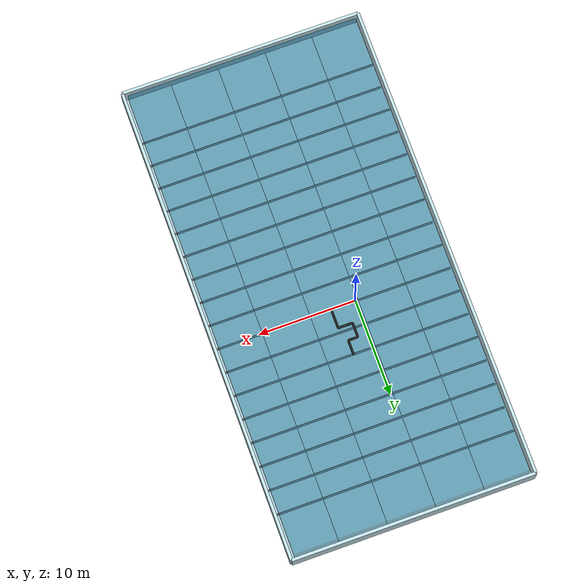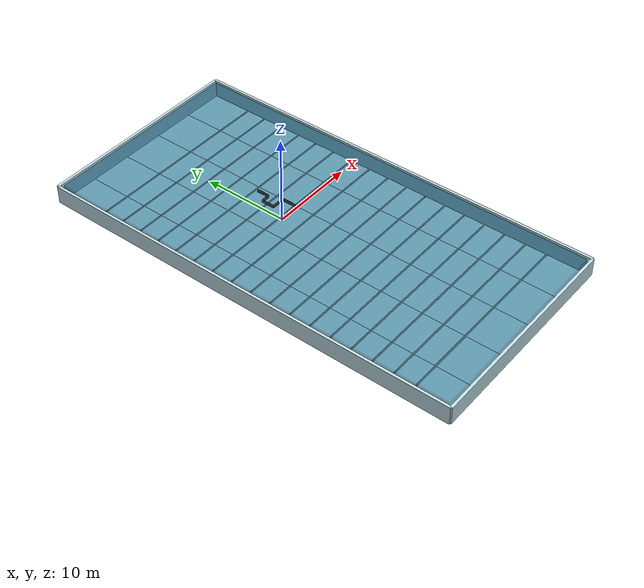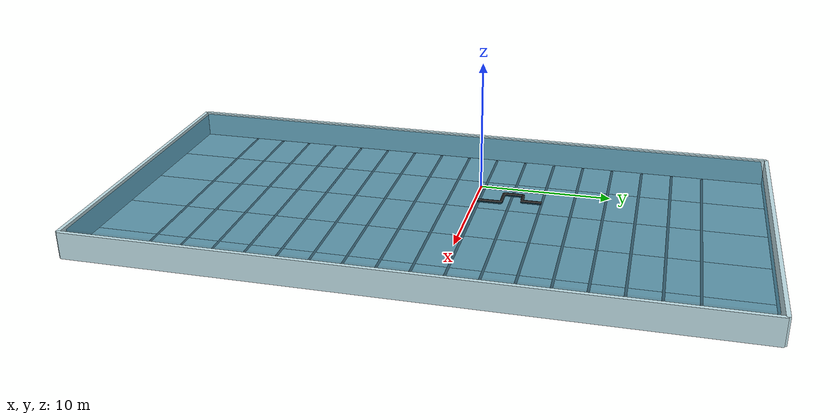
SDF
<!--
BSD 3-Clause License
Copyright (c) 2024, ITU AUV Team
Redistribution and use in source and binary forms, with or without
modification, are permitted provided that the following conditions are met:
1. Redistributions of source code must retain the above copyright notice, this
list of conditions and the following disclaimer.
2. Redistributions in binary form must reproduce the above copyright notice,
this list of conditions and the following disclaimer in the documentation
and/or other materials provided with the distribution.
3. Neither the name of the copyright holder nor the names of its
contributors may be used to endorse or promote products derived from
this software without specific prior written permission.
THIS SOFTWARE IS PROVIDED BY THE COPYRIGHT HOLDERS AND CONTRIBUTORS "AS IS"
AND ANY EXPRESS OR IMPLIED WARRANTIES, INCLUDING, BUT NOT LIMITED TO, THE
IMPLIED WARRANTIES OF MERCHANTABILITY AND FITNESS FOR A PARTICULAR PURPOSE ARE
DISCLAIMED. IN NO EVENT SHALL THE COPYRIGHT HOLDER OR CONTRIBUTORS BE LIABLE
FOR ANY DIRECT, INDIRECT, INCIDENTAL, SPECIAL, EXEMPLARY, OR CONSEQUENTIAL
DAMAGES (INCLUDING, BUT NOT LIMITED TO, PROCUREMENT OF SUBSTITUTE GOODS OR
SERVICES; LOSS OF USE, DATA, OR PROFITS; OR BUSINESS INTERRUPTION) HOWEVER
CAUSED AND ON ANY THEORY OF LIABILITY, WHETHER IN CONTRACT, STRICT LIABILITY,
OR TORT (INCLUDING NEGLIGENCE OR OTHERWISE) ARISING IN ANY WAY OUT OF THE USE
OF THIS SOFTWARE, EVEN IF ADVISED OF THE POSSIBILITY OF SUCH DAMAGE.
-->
<?xml version="1.0" ?>

<sdf version="1.6">
  <world name="prototype_world">
    <physics name="1ms" type="ignored">
      <max_step_size>0.004</max_step_size>
      <real_time_factor>1.0</real_time_factor>
      <real_time_update_rate>250</real_time_update_rate>
    </physics>
    <scene>
      <ambient>0.35 0.45 0.5 1.0</ambient>
      <background>0.3 0.5 0.6 1.0</background>
      <sky><clouds><speed>12</speed></clouds></sky>
      <shadows>true</shadows>
      <!-- Faint blue-green underwater haze; starts past most of the pool's
           width so the course stays fully visible, just tints the far wall. -->
      <fog>
        <color>0.05 0.25 0.35 1.0</color>
        <type>linear</type>
        <density>0.01</density>
        <start>8</start>
        <end>45</end>
      </fog>
    </scene>

    <include><uri>https://fuel.gazebosim.org/1.0/OpenRobotics/models/Sun</uri></include>

    <include>
      <uri>model://pool</uri>
      <name>pool</name>
      <pose>2 -3 0 0 0 0</pose>
    </include>
    <model name='lane_marker_1'>
      <static>1</static>
      <pose>2 7 -2.134 0 0 0</pose>
      <link name='lane_marker_1_link'>
        <visual name='lane_marker_1_visual'>
          <geometry>
            <box>
              <size>24.4 0.2 0.01</size>
            </box>
          </geometry>
          <material>
            <ambient>0.4 0.4 0.4 1</ambient>
            <diffuse>0.4 0.4 0.4 1</diffuse>
            <specular>0.1 0.1 0.1 1</specular>
          </material>
        </visual>
        <self_collide>0</self_collide>
        <enable_wind>0</enable_wind>
        <kinematic>0</kinematic>
      </link>
    </model>
    <model name='lane_marker_2'>
      <static>1</static>
      <pose>2 4.5 -2.134 0 0 0</pose>
      <link name='lane_marker_2_link'>
        <visual name='lane_marker_2_visual'>
          <geometry>
            <box>
              <size>24.4 0.2 0.01</size>
            </box>
          </geometry>
          <material>
            <ambient>0.4 0.4 0.4 1</ambient>
            <diffuse>0.4 0.4 0.4 1</diffuse>
            <specular>0.1 0.1 0.1 1</specular>
          </material>
        </visual>
        <self_collide>0</self_collide>
        <enable_wind>0</enable_wind>
        <kinematic>0</kinematic>
      </link>
    </model>
    <model name='lane_marker_3'>
      <static>1</static>
      <pose>2 2 -2.134 0 0 0</pose>
      <link name='lane_marker_3_link'>
        <visual name='lane_marker_3_visual'>
          <geometry>
            <box>
              <size>24.4 0.2 0.01</size>
            </box>
          </geometry>
          <material>
            <ambient>0.4 0.4 0.4 1</ambient>
            <diffuse>0.4 0.4 0.4 1</diffuse>
            <specular>0.1 0.1 0.1 1</specular>
          </material>
        </visual>
        <self_collide>0</self_collide>
        <enable_wind>0</enable_wind>
        <kinematic>0</kinematic>
      </link>
    </model>
    <model name='lane_marker_4'>
      <static>1</static>
      <pose>2 -0.5 -2.134 0 0 0</pose>
      <link name='lane_marker_4_link'>
        <visual name='lane_marker_4_visual'>
          <geometry>
            <box>
              <size>24.4 0.2 0.01</size>
            </box>
          </geometry>
          <material>
            <ambient>0.4 0.4 0.4 1</ambient>
            <diffuse>0.4 0.4 0.4 1</diffuse>
            <specular>0.1 0.1 0.1 1</specular>
          </material>
        </visual>
        <self_collide>0</self_collide>
        <enable_wind>0</enable_wind>
        <kinematic>0</kinematic>
      </link>
    </model>
    <model name='lane_marker_5'>
      <static>1</static>
      <pose>2 -3 -2.134 0 0 0</pose>
      <link name='lane_marker_5_link'>
        <visual name='lane_marker_5_visual'>
          <geometry>
            <box>
              <size>24.4 0.2 0.01</size>
            </box>
          </geometry>
          <material>
            <ambient>0.4 0.4 0.4 1</ambient>
            <diffuse>0.4 0.4 0.4 1</diffuse>
            <specular>0.1 0.1 0.1 1</specular>
          </material>
        </visual>
        <self_collide>0</self_collide>
        <enable_wind>0</enable_wind>
        <kinematic>0</kinematic>
      </link>
    </model>
    <model name='lane_marker_6'>
      <static>1</static>
      <pose>2 -5.5 -2.134 0 0 0</pose>
      <link name='lane_marker_6_link'>
        <visual name='lane_marker_6_visual'>
          <geometry>
            <box>
              <size>24.4 0.2 0.01</size>
            </box>
          </geometry>
          <material>
            <ambient>0.4 0.4 0.4 1</ambient>
            <diffuse>0.4 0.4 0.4 1</diffuse>
            <specular>0.1 0.1 0.1 1</specular>
          </material>
        </visual>
        <self_collide>0</self_collide>
        <enable_wind>0</enable_wind>
        <kinematic>0</kinematic>
      </link>
    </model>
    <model name='lane_marker_7'>
      <static>1</static>
      <pose>2 -8 -2.134 0 0 0</pose>
      <link name='lane_marker_7_link'>
        <visual name='lane_marker_7_visual'>
          <geometry>
            <box>
              <size>24.4 0.2 0.01</size>
            </box>
          </geometry>
          <material>
            <ambient>0.4 0.4 0.4 1</ambient>
            <diffuse>0.4 0.4 0.4 1</diffuse>
            <specular>0.1 0.1 0.1 1</specular>
          </material>
        </visual>
        <self_collide>0</self_collide>
        <enable_wind>0</enable_wind>
        <kinematic>0</kinematic>
      </link>
    </model>
    <model name='lane_marker_8'>
      <static>1</static>
      <pose>2 -10.5 -2.134 0 0 0</pose>
      <link name='lane_marker_8_link'>
        <visual name='lane_marker_8_visual'>
          <geometry>
            <box>
              <size>24.4 0.2 0.01</size>
            </box>
          </geometry>
          <material>
            <ambient>0.4 0.4 0.4 1</ambient>
            <diffuse>0.4 0.4 0.4 1</diffuse>
            <specular>0.1 0.1 0.1 1</specular>
          </material>
        </visual>
        <self_collide>0</self_collide>
        <enable_wind>0</enable_wind>
        <kinematic>0</kinematic>
      </link>
    </model>
    <model name='lane_marker_9'>
      <static>1</static>
      <pose>2 -13 -2.134 0 0 0</pose>
      <link name='lane_marker_9_link'>
        <visual name='lane_marker_9_visual'>
          <geometry>
            <box>
              <size>24.4 0.2 0.01</size>
            </box>
          </geometry>
          <material>
            <ambient>0.4 0.4 0.4 1</ambient>
            <diffuse>0.4 0.4 0.4 1</diffuse>
            <specular>0.1 0.1 0.1 1</specular>
          </material>
        </visual>
        <self_collide>0</self_collide>
        <enable_wind>0</enable_wind>
        <kinematic>0</kinematic>
      </link>
    </model>
    <model name='lane_marker_10'>
      <static>1</static>
      <pose>2 -15.5 -2.134 0 0 0</pose>
      <link name='lane_marker_10_link'>
        <visual name='lane_marker_10_visual'>
          <geometry>
            <box>
              <size>24.4 0.2 0.01</size>
            </box>
          </geometry>
          <material>
            <ambient>0.4 0.4 0.4 1</ambient>
            <diffuse>0.4 0.4 0.4 1</diffuse>
            <specular>0.1 0.1 0.1 1</specular>
          </material>
        </visual>
        <self_collide>0</self_collide>
        <enable_wind>0</enable_wind>
        <kinematic>0</kinematic>
      </link>
    </model>
    <model name='lane_marker_11'>
      <static>1</static>
      <pose>2 -18 -2.134 0 0 0</pose>
      <link name='lane_marker_11_link'>
        <visual name='lane_marker_11_visual'>
          <geometry>
            <box>
              <size>24.4 0.2 0.01</size>
            </box>
          </geometry>
          <material>
            <ambient>0.4 0.4 0.4 1</ambient>
            <diffuse>0.4 0.4 0.4 1</diffuse>
            <specular>0.1 0.1 0.1 1</specular>
          </material>
        </visual>
        <self_collide>0</self_collide>
        <enable_wind>0</enable_wind>
        <kinematic>0</kinematic>
      </link>
    </model>
    <model name='lane_marker_12'>
      <static>1</static>
      <pose>2 -20.5 -2.134 0 0 0</pose>
      <link name='lane_marker_12_link'>
        <visual name='lane_marker_12_visual'>
          <geometry>
            <box>
              <size>24.4 0.2 0.01</size>
            </box>
          </geometry>
          <material>
            <ambient>0.4 0.4 0.4 1</ambient>
            <diffuse>0.4 0.4 0.4 1</diffuse>
            <specular>0.1 0.1 0.1 1</specular>
          </material>
        </visual>
        <self_collide>0</self_collide>
        <enable_wind>0</enable_wind>
        <kinematic>0</kinematic>
      </link>
    </model>
    <model name='lane_marker_13'>
      <static>1</static>
      <pose>2 -23 -2.134 0 0 0</pose>
      <link name='lane_marker_13_link'>
        <visual name='lane_marker_13_visual'>
          <geometry>
            <box>
              <size>24.4 0.2 0.01</size>
            </box>
          </geometry>
          <material>
            <ambient>0.4 0.4 0.4 1</ambient>
            <diffuse>0.4 0.4 0.4 1</diffuse>
            <specular>0.1 0.1 0.1 1</specular>
          </material>
        </visual>
        <self_collide>0</self_collide>
        <enable_wind>0</enable_wind>
        <kinematic>0</kinematic>
      </link>
    </model>
    <model name='lane_marker_14'>
      <static>1</static>
      <pose>2 9.5 -2.134 0 0 0</pose>
      <link name='lane_marker_14_link'>
        <visual name='lane_marker_14_visual'>
          <geometry>
            <box>
              <size>24.4 0.2 0.01</size>
            </box>
          </geometry>
          <material>
            <ambient>0.4 0.4 0.4 1</ambient>
            <diffuse>0.4 0.4 0.4 1</diffuse>
            <specular>0.1 0.1 0.1 1</specular>
          </material>
        </visual>
        <self_collide>0</self_collide>
        <enable_wind>0</enable_wind>
        <kinematic>0</kinematic>
      </link>
    </model>
    <model name='lane_marker_15'>
      <static>1</static>
      <pose>2 12 -2.134 0 0 0</pose>
      <link name='lane_marker_15_link'>
        <visual name='lane_marker_15_visual'>
          <geometry>
            <box>
              <size>24.4 0.2 0.01</size>
            </box>
          </geometry>
          <material>
            <ambient>0.4 0.4 0.4 1</ambient>
            <diffuse>0.4 0.4 0.4 1</diffuse>
            <specular>0.1 0.1 0.1 1</specular>
          </material>
        </visual>
        <self_collide>0</self_collide>
        <enable_wind>0</enable_wind>
        <kinematic>0</kinematic>
      </link>
    </model>
    <model name='lane_marker_16'>
      <static>1</static>
      <pose>2 14.5 -2.134 0 0 0</pose>
      <link name='lane_marker_16_link'>
        <visual name='lane_marker_16_visual'>
          <geometry>
            <box>
              <size>24.4 0.2 0.01</size>
            </box>
          </geometry>
          <material>
            <ambient>0.4 0.4 0.4 1</ambient>
            <diffuse>0.4 0.4 0.4 1</diffuse>
            <specular>0.1 0.1 0.1 1</specular>
          </material>
        </visual>
        <self_collide>0</self_collide>
        <enable_wind>0</enable_wind>
        <kinematic>0</kinematic>
      </link>
    </model>
    <model name='lane_marker_17'>
      <static>1</static>
      <pose>2 17 -2.134 0 0 0</pose>
      <link name='lane_marker_17_link'>
        <visual name='lane_marker_17_visual'>
          <geometry>
            <box>
              <size>24.4 0.2 0.01</size>
            </box>
          </geometry>
          <material>
            <ambient>0.4 0.4 0.4 1</ambient>
            <diffuse>0.4 0.4 0.4 1</diffuse>
            <specular>0.1 0.1 0.1 1</specular>
          </material>
        </visual>
        <self_collide>0</self_collide>
        <enable_wind>0</enable_wind>
        <kinematic>0</kinematic>
      </link>
    </model>

    <include>
      <uri>model://teknofest_pipe</uri>
      <name>pipe</name>
      <pose>0 0 0 0 0 0</pose>
    </include>

    <plugin filename="gz-sim-physics-system" name="gz::sim::systems::Physics"></plugin>
    <plugin filename="gz-sim-user-commands-system" name="gz::sim::systems::UserCommands"></plugin>
    <plugin filename="gz-sim-scene-broadcaster-system" name="gz::sim::systems::SceneBroadcaster"></plugin>
    <plugin filename="gz-sim-imu-system" name="gz::sim::systems::Imu"></plugin>
    <plugin filename="gz-sim-dvl-system" name="gz::sim::systems::DopplerVelocityLogSystem"></plugin>
    <plugin filename="gz-sim-sensors-system" name="gz::sim::systems::Sensors">
      <render_engine>ogre2</render_engine>
    </plugin>

    <plugin
        filename="gz-sim-buoyancy-system"
        name="gz::sim::systems::Buoyancy">
      <!-- Fluid density is 1 (air) above 0 and 1000 (water) below 0 -->
      <graded_buoyancy>
        <default_density>1000</default_density>
        <density_change>
          <above_depth>0</above_depth>
          <density>1</density>
        </density_change>
      </graded_buoyancy>
      <!-- Enable by model name -->
      <enable>prototype_vehicle</enable>
    </plugin>

  </world>
</sdf>

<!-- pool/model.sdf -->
<sdf version="1.6">
  <model name="pool">
    <static>true</static>

    <!-- Floor: one physics collision box, a tiled grid of visual-only
         squares on top so the PBR texture keeps a 1:1 aspect ratio instead
         of stretching across the full 25x50m span. -->
    <link name="floor_link">
      <collision name="floor_collision">
        <pose>0 0 -2.18 0 0 0</pose>
        <geometry>
          <box><size>25.0 50.0 0.1</size></box>
        </geometry>
        <surface>
          <friction><ode><mu>0.5</mu><mu2>0.5</mu2></ode></friction>
          <contact><ode/></contact>
          <bounce/>
        </surface>
      </collision>
      <visual name="floor_tile_1_visual">
        <pose>-10 -22.5 -2.13 0 0 0</pose>
        <geometry>
          <box><size>5 5 0.001</size></box>
        </geometry>
          <material>
            <ambient>0.55 0.7 0.75 1</ambient>
            <diffuse>0.7 0.82 0.85 1</diffuse>
            <specular>0.2 0.2 0.2 1</specular>
            <pbr>
              <metal>
                <albedo_map>model://pool/materials/textures/pool_floor.png</albedo_map>
                <normal_map>model://pool/materials/textures/pool_floor_normal.png</normal_map>
                <roughness_map>model://pool/materials/textures/pool_floor_roughness.png</roughness_map>
                <metalness>0.0</metalness>
              </metal>
            </pbr>
          </material>
      </visual>
      <visual name="floor_tile_2_visual">
        <pose>-10 -17.5 -2.13 0 0 0</pose>
        <geometry>
          <box><size>5 5 0.001</size></box>
        </geometry>
          <material>
            <ambient>0.55 0.7 0.75 1</ambient>
            <diffuse>0.7 0.82 0.85 1</diffuse>
            <specular>0.2 0.2 0.2 1</specular>
            <pbr>
              <metal>
                <albedo_map>model://pool/materials/textures/pool_floor.png</albedo_map>
                <normal_map>model://pool/materials/textures/pool_floor_normal.png</normal_map>
                <roughness_map>model://pool/materials/textures/pool_floor_roughness.png</roughness_map>
                <metalness>0.0</metalness>
              </metal>
            </pbr>
          </material>
      </visual>
      <visual name="floor_tile_3_visual">
        <pose>-10 -12.5 -2.13 0 0 0</pose>
        <geometry>
          <box><size>5 5 0.001</size></box>
        </geometry>
          <material>
            <ambient>0.55 0.7 0.75 1</ambient>
            <diffuse>0.7 0.82 0.85 1</diffuse>
            <specular>0.2 0.2 0.2 1</specular>
            <pbr>
              <metal>
                <albedo_map>model://pool/materials/textures/pool_floor.png</albedo_map>
                <normal_map>model://pool/materials/textures/pool_floor_normal.png</normal_map>
                <roughness_map>model://pool/materials/textures/pool_floor_roughness.png</roughness_map>
                <metalness>0.0</metalness>
              </metal>
            </pbr>
          </material>
      </visual>
      <visual name="floor_tile_4_visual">
        <pose>-10 -7.5 -2.13 0 0 0</pose>
        <geometry>
          <box><size>5 5 0.001</size></box>
        </geometry>
          <material>
            <ambient>0.55 0.7 0.75 1</ambient>
            <diffuse>0.7 0.82 0.85 1</diffuse>
            <specular>0.2 0.2 0.2 1</specular>
            <pbr>
              <metal>
                <albedo_map>model://pool/materials/textures/pool_floor.png</albedo_map>
                <normal_map>model://pool/materials/textures/pool_floor_normal.png</normal_map>
                <roughness_map>model://pool/materials/textures/pool_floor_roughness.png</roughness_map>
                <metalness>0.0</metalness>
              </metal>
            </pbr>
          </material>
      </visual>
      <visual name="floor_tile_5_visual">
        <pose>-10 -2.5 -2.13 0 0 0</pose>
        <geometry>
          <box><size>5 5 0.001</size></box>
        </geometry>
          <material>
            <ambient>0.55 0.7 0.75 1</ambient>
            <diffuse>0.7 0.82 0.85 1</diffuse>
            <specular>0.2 0.2 0.2 1</specular>
            <pbr>
              <metal>
                <albedo_map>model://pool/materials/textures/pool_floor.png</albedo_map>
                <normal_map>model://pool/materials/textures/pool_floor_normal.png</normal_map>
                <roughness_map>model://pool/materials/textures/pool_floor_roughness.png</roughness_map>
                <metalness>0.0</metalness>
              </metal>
            </pbr>
          </material>
      </visual>
      <visual name="floor_tile_6_visual">
        <pose>-10 2.5 -2.13 0 0 0</pose>
        <geometry>
          <box><size>5 5 0.001</size></box>
        </geometry>
          <material>
            <ambient>0.55 0.7 0.75 1</ambient>
            <diffuse>0.7 0.82 0.85 1</diffuse>
            <specular>0.2 0.2 0.2 1</specular>
            <pbr>
              <metal>
                <albedo_map>model://pool/materials/textures/pool_floor.png</albedo_map>
                <normal_map>model://pool/materials/textures/pool_floor_normal.png</normal_map>
                <roughness_map>model://pool/materials/textures/pool_floor_roughness.png</roughness_map>
                <metalness>0.0</metalness>
              </metal>
            </pbr>
          </material>
      </visual>
      <visual name="floor_tile_7_visual">
        <pose>-10 7.5 -2.13 0 0 0</pose>
        <geometry>
          <box><size>5 5 0.001</size></box>
        </geometry>
          <material>
            <ambient>0.55 0.7 0.75 1</ambient>
            <diffuse>0.7 0.82 0.85 1</diffuse>
            <specular>0.2 0.2 0.2 1</specular>
            <pbr>
              <metal>
                <albedo_map>model://pool/materials/textures/pool_floor.png</albedo_map>
                <normal_map>model://pool/materials/textures/pool_floor_normal.png</normal_map>
                <roughness_map>model://pool/materials/textures/pool_floor_roughness.png</roughness_map>
                <metalness>0.0</metalness>
              </metal>
            </pbr>
          </material>
      </visual>
      <visual name="floor_tile_8_visual">
        <pose>-10 12.5 -2.13 0 0 0</pose>
        <geometry>
          <box><size>5 5 0.001</size></box>
        </geometry>
          <material>
            <ambient>0.55 0.7 0.75 1</ambient>
            <diffuse>0.7 0.82 0.85 1</diffuse>
            <specular>0.2 0.2 0.2 1</specular>
            <pbr>
              <metal>
                <albedo_map>model://pool/materials/textures/pool_floor.png</albedo_map>
                <normal_map>model://pool/materials/textures/pool_floor_normal.png</normal_map>
                <roughness_map>model://pool/materials/textures/pool_floor_roughness.png</roughness_map>
                <metalness>0.0</metalness>
              </metal>
            </pbr>
          </material>
      </visual>
      <visual name="floor_tile_9_visual">
        <pose>-10 17.5 -2.13 0 0 0</pose>
        <geometry>
          <box><size>5 5 0.001</size></box>
        </geometry>
          <material>
            <ambient>0.55 0.7 0.75 1</ambient>
            <diffuse>0.7 0.82 0.85 1</diffuse>
            <specular>0.2 0.2 0.2 1</specular>
            <pbr>
              <metal>
                <albedo_map>model://pool/materials/textures/pool_floor.png</albedo_map>
                <normal_map>model://pool/materials/textures/pool_floor_normal.png</normal_map>
                <roughness_map>model://pool/materials/textures/pool_floor_roughness.png</roughness_map>
                <metalness>0.0</metalness>
              </metal>
            </pbr>
          </material>
      </visual>
      <visual name="floor_tile_10_visual">
        <pose>-10 22.5 -2.13 0 0 0</pose>
        <geometry>
          <box><size>5 5 0.001</size></box>
        </geometry>
          <material>
            <ambient>0.55 0.7 0.75 1</ambient>
            <diffuse>0.7 0.82 0.85 1</diffuse>
            <specular>0.2 0.2 0.2 1</specular>
            <pbr>
              <metal>
                <albedo_map>model://pool/materials/textures/pool_floor.png</albedo_map>
                <normal_map>model://pool/materials/textures/pool_floor_normal.png</normal_map>
                <roughness_map>model://pool/materials/textures/pool_floor_roughness.png</roughness_map>
                <metalness>0.0</metalness>
              </metal>
            </pbr>
          </material>
      </visual>
      <visual name="floor_tile_11_visual">
        <pose>-5 -22.5 -2.13 0 0 0</pose>
        <geometry>
          <box><size>5 5 0.001</size></box>
        </geometry>
          <material>
            <ambient>0.55 0.7 0.75 1</ambient>
            <diffuse>0.7 0.82 0.85 1</diffuse>
            <specular>0.2 0.2 0.2 1</specular>
            <pbr>
              <metal>
                <albedo_map>model://pool/materials/textures/pool_floor.png</albedo_map>
                <normal_map>model://pool/materials/textures/pool_floor_normal.png</normal_map>
                <roughness_map>model://pool/materials/textures/pool_floor_roughness.png</roughness_map>
                <metalness>0.0</metalness>
              </metal>
            </pbr>
          </material>
      </visual>
      <visual name="floor_tile_12_visual">
        <pose>-5 -17.5 -2.13 0 0 0</pose>
        <geometry>
          <box><size>5 5 0.001</size></box>
        </geometry>
          <material>
            <ambient>0.55 0.7 0.75 1</ambient>
            <diffuse>0.7 0.82 0.85 1</diffuse>
            <specular>0.2 0.2 0.2 1</specular>
            <pbr>
              <metal>
                <albedo_map>model://pool/materials/textures/pool_floor.png</albedo_map>
                <normal_map>model://pool/materials/textures/pool_floor_normal.png</normal_map>
                <roughness_map>model://pool/materials/textures/pool_floor_roughness.png</roughness_map>
                <metalness>0.0</metalness>
              </metal>
            </pbr>
          </material>
      </visual>
      <visual name="floor_tile_13_visual">
        <pose>-5 -12.5 -2.13 0 0 0</pose>
        <geometry>
          <box><size>5 5 0.001</size></box>
        </geometry>
          <material>
            <ambient>0.55 0.7 0.75 1</ambient>
            <diffuse>0.7 0.82 0.85 1</diffuse>
            <specular>0.2 0.2 0.2 1</specular>
            <pbr>
              <metal>
                <albedo_map>model://pool/materials/textures/pool_floor.png</albedo_map>
                <normal_map>model://pool/materials/textures/pool_floor_normal.png</normal_map>
                <roughness_map>model://pool/materials/textures/pool_floor_roughness.png</roughness_map>
                <metalness>0.0</metalness>
              </metal>
            </pbr>
          </material>
      </visual>
      <visual name="floor_tile_14_visual">
        <pose>-5 -7.5 -2.13 0 0 0</pose>
        <geometry>
          <box><size>5 5 0.001</size></box>
        </geometry>
          <material>
            <ambient>0.55 0.7 0.75 1</ambient>
            <diffuse>0.7 0.82 0.85 1</diffuse>
            <specular>0.2 0.2 0.2 1</specular>
            <pbr>
              <metal>
                <albedo_map>model://pool/materials/textures/pool_floor.png</albedo_map>
                <normal_map>model://pool/materials/textures/pool_floor_normal.png</normal_map>
                <roughness_map>model://pool/materials/textures/pool_floor_roughness.png</roughness_map>
                <metalness>0.0</metalness>
              </metal>
            </pbr>
          </material>
      </visual>
      <visual name="floor_tile_15_visual">
        <pose>-5 -2.5 -2.13 0 0 0</pose>
        <geometry>
          <box><size>5 5 0.001</size></box>
        </geometry>
          <material>
            <ambient>0.55 0.7 0.75 1</ambient>
            <diffuse>0.7 0.82 0.85 1</diffuse>
            <specular>0.2 0.2 0.2 1</specular>
            <pbr>
              <metal>
                <albedo_map>model://pool/materials/textures/pool_floor.png</albedo_map>
                <normal_map>model://pool/materials/textures/pool_floor_normal.png</normal_map>
                <roughness_map>model://pool/materials/textures/pool_floor_roughness.png</roughness_map>
                <metalness>0.0</metalness>
              </metal>
            </pbr>
          </material>
      </visual>
      <visual name="floor_tile_16_visual">
        <pose>-5 2.5 -2.13 0 0 0</pose>
        <geometry>
          <box><size>5 5 0.001</size></box>
        </geometry>
          <material>
            <ambient>0.55 0.7 0.75 1</ambient>
            <diffuse>0.7 0.82 0.85 1</diffuse>
            <specular>0.2 0.2 0.2 1</specular>
            <pbr>
              <metal>
                <albedo_map>model://pool/materials/textures/pool_floor.png</albedo_map>
                <normal_map>model://pool/materials/textures/pool_floor_normal.png</normal_map>
                <roughness_map>model://pool/materials/textures/pool_floor_roughness.png</roughness_map>
                <metalness>0.0</metalness>
              </metal>
            </pbr>
          </material>
      </visual>
      <visual name="floor_tile_17_visual">
        <pose>-5 7.5 -2.13 0 0 0</pose>
        <geometry>
          <box><size>5 5 0.001</size></box>
        </geometry>
          <material>
            <ambient>0.55 0.7 0.75 1</ambient>
            <diffuse>0.7 0.82 0.85 1</diffuse>
            <specular>0.2 0.2 0.2 1</specular>
            <pbr>
              <metal>
                <albedo_map>model://pool/materials/textures/pool_floor.png</albedo_map>
                <normal_map>model://pool/materials/textures/pool_floor_normal.png</normal_map>
                <roughness_map>model://pool/materials/textures/pool_floor_roughness.png</roughness_map>
                <metalness>0.0</metalness>
              </metal>
            </pbr>
          </material>
      </visual>
      <visual name="floor_tile_18_visual">
        <pose>-5 12.5 -2.13 0 0 0</pose>
        <geometry>
          <box><size>5 5 0.001</size></box>
        </geometry>
          <material>
            <ambient>0.55 0.7 0.75 1</ambient>
            <diffuse>0.7 0.82 0.85 1</diffuse>
            <specular>0.2 0.2 0.2 1</specular>
            <pbr>
              <metal>
                <albedo_map>model://pool/materials/textures/pool_floor.png</albedo_map>
                <normal_map>model://pool/materials/textures/pool_floor_normal.png</normal_map>
                <roughness_map>model://pool/materials/textures/pool_floor_roughness.png</roughness_map>
                <metalness>0.0</metalness>
              </metal>
            </pbr>
          </material>
      </visual>
      <visual name="floor_tile_19_visual">
        <pose>-5 17.5 -2.13 0 0 0</pose>
        <geometry>
          <box><size>5 5 0.001</size></box>
        </geometry>
          <material>
            <ambient>0.55 0.7 0.75 1</ambient>
            <diffuse>0.7 0.82 0.85 1</diffuse>
            <specular>0.2 0.2 0.2 1</specular>
            <pbr>
              <metal>
                <albedo_map>model://pool/materials/textures/pool_floor.png</albedo_map>
                <normal_map>model://pool/materials/textures/pool_floor_normal.png</normal_map>
                <roughness_map>model://pool/materials/textures/pool_floor_roughness.png</roughness_map>
                <metalness>0.0</metalness>
              </metal>
            </pbr>
          </material>
      </visual>
      <visual name="floor_tile_20_visual">
        <pose>-5 22.5 -2.13 0 0 0</pose>
        <geometry>
          <box><size>5 5 0.001</size></box>
        </geometry>
          <material>
            <ambient>0.55 0.7 0.75 1</ambient>
            <diffuse>0.7 0.82 0.85 1</diffuse>
            <specular>0.2 0.2 0.2 1</specular>
            <pbr>
              <metal>
                <albedo_map>model://pool/materials/textures/pool_floor.png</albedo_map>
                <normal_map>model://pool/materials/textures/pool_floor_normal.png</normal_map>
                <roughness_map>model://pool/materials/textures/pool_floor_roughness.png</roughness_map>
                <metalness>0.0</metalness>
              </metal>
            </pbr>
          </material>
      </visual>
      <visual name="floor_tile_21_visual">
        <pose>0 -22.5 -2.13 0 0 0</pose>
        <geometry>
          <box><size>5 5 0.001</size></box>
        </geometry>
          <material>
            <ambient>0.55 0.7 0.75 1</ambient>
            <diffuse>0.7 0.82 0.85 1</diffuse>
            <specular>0.2 0.2 0.2 1</specular>
            <pbr>
              <metal>
                <albedo_map>model://pool/materials/textures/pool_floor.png</albedo_map>
                <normal_map>model://pool/materials/textures/pool_floor_normal.png</normal_map>
                <roughness_map>model://pool/materials/textures/pool_floor_roughness.png</roughness_map>
                <metalness>0.0</metalness>
              </metal>
            </pbr>
          </material>
      </visual>
      <visual name="floor_tile_22_visual">
        <pose>0 -17.5 -2.13 0 0 0</pose>
        <geometry>
          <box><size>5 5 0.001</size></box>
        </geometry>
          <material>
            <ambient>0.55 0.7 0.75 1</ambient>
            <diffuse>0.7 0.82 0.85 1</diffuse>
            <specular>0.2 0.2 0.2 1</specular>
            <pbr>
              <metal>
                <albedo_map>model://pool/materials/textures/pool_floor.png</albedo_map>
                <normal_map>model://pool/materials/textures/pool_floor_normal.png</normal_map>
                <roughness_map>model://pool/materials/textures/pool_floor_roughness.png</roughness_map>
                <metalness>0.0</metalness>
              </metal>
            </pbr>
          </material>
      </visual>
      <visual name="floor_tile_23_visual">
        <pose>0 -12.5 -2.13 0 0 0</pose>
        <geometry>
          <box><size>5 5 0.001</size></box>
        </geometry>
          <material>
            <ambient>0.55 0.7 0.75 1</ambient>
            <diffuse>0.7 0.82 0.85 1</diffuse>
            <specular>0.2 0.2 0.2 1</specular>
            <pbr>
              <metal>
                <albedo_map>model://pool/materials/textures/pool_floor.png</albedo_map>
                <normal_map>model://pool/materials/textures/pool_floor_normal.png</normal_map>
                <roughness_map>model://pool/materials/textures/pool_floor_roughness.png</roughness_map>
                <metalness>0.0</metalness>
              </metal>
            </pbr>
          </material>
      </visual>
      <visual name="floor_tile_24_visual">
        <pose>0 -7.5 -2.13 0 0 0</pose>
        <geometry>
          <box><size>5 5 0.001</size></box>
        </geometry>
          <material>
            <ambient>0.55 0.7 0.75 1</ambient>
            <diffuse>0.7 0.82 0.85 1</diffuse>
            <specular>0.2 0.2 0.2 1</specular>
            <pbr>
              <metal>
                <albedo_map>model://pool/materials/textures/pool_floor.png</albedo_map>
                <normal_map>model://pool/materials/textures/pool_floor_normal.png</normal_map>
                <roughness_map>model://pool/materials/textures/pool_floor_roughness.png</roughness_map>
                <metalness>0.0</metalness>
              </metal>
            </pbr>
          </material>
      </visual>
      <visual name="floor_tile_25_visual">
        <pose>0 -2.5 -2.13 0 0 0</pose>
        <geometry>
          <box><size>5 5 0.001</size></box>
        </geometry>
          <material>
            <ambient>0.55 0.7 0.75 1</ambient>
            <diffuse>0.7 0.82 0.85 1</diffuse>
            <specular>0.2 0.2 0.2 1</specular>
            <pbr>
              <metal>
                <albedo_map>model://pool/materials/textures/pool_floor.png</albedo_map>
                <normal_map>model://pool/materials/textures/pool_floor_normal.png</normal_map>
                <roughness_map>model://pool/materials/textures/pool_floor_roughness.png</roughness_map>
                <metalness>0.0</metalness>
              </metal>
            </pbr>
          </material>
      </visual>
      <visual name="floor_tile_26_visual">
        <pose>0 2.5 -2.13 0 0 0</pose>
        <geometry>
          <box><size>5 5 0.001</size></box>
        </geometry>
          <material>
            <ambient>0.55 0.7 0.75 1</ambient>
            <diffuse>0.7 0.82 0.85 1</diffuse>
            <specular>0.2 0.2 0.2 1</specular>
            <pbr>
              <metal>
                <albedo_map>model://pool/materials/textures/pool_floor.png</albedo_map>
                <normal_map>model://pool/materials/textures/pool_floor_normal.png</normal_map>
                <roughness_map>model://pool/materials/textures/pool_floor_roughness.png</roughness_map>
                <metalness>0.0</metalness>
              </metal>
            </pbr>
          </material>
      </visual>
      <visual name="floor_tile_27_visual">
        <pose>0 7.5 -2.13 0 0 0</pose>
        <geometry>
          <box><size>5 5 0.001</size></box>
        </geometry>
          <material>
            <ambient>0.55 0.7 0.75 1</ambient>
            <diffuse>0.7 0.82 0.85 1</diffuse>
            <specular>0.2 0.2 0.2 1</specular>
            <pbr>
              <metal>
                <albedo_map>model://pool/materials/textures/pool_floor.png</albedo_map>
                <normal_map>model://pool/materials/textures/pool_floor_normal.png</normal_map>
                <roughness_map>model://pool/materials/textures/pool_floor_roughness.png</roughness_map>
                <metalness>0.0</metalness>
              </metal>
            </pbr>
          </material>
      </visual>
      <visual name="floor_tile_28_visual">
        <pose>0 12.5 -2.13 0 0 0</pose>
        <geometry>
          <box><size>5 5 0.001</size></box>
        </geometry>
          <material>
            <ambient>0.55 0.7 0.75 1</ambient>
            <diffuse>0.7 0.82 0.85 1</diffuse>
            <specular>0.2 0.2 0.2 1</specular>
            <pbr>
              <metal>
                <albedo_map>model://pool/materials/textures/pool_floor.png</albedo_map>
                <normal_map>model://pool/materials/textures/pool_floor_normal.png</normal_map>
                <roughness_map>model://pool/materials/textures/pool_floor_roughness.png</roughness_map>
                <metalness>0.0</metalness>
              </metal>
            </pbr>
          </material>
      </visual>
      <visual name="floor_tile_29_visual">
        <pose>0 17.5 -2.13 0 0 0</pose>
        <geometry>
          <box><size>5 5 0.001</size></box>
        </geometry>
          <material>
            <ambient>0.55 0.7 0.75 1</ambient>
            <diffuse>0.7 0.82 0.85 1</diffuse>
            <specular>0.2 0.2 0.2 1</specular>
            <pbr>
              <metal>
                <albedo_map>model://pool/materials/textures/pool_floor.png</albedo_map>
                <normal_map>model://pool/materials/textures/pool_floor_normal.png</normal_map>
                <roughness_map>model://pool/materials/textures/pool_floor_roughness.png</roughness_map>
                <metalness>0.0</metalness>
              </metal>
            </pbr>
          </material>
      </visual>
      <visual name="floor_tile_30_visual">
        <pose>0 22.5 -2.13 0 0 0</pose>
        <geometry>
          <box><size>5 5 0.001</size></box>
        </geometry>
          <material>
            <ambient>0.55 0.7 0.75 1</ambient>
            <diffuse>0.7 0.82 0.85 1</diffuse>
            <specular>0.2 0.2 0.2 1</specular>
            <pbr>
              <metal>
                <albedo_map>model://pool/materials/textures/pool_floor.png</albedo_map>
                <normal_map>model://pool/materials/textures/pool_floor_normal.png</normal_map>
                <roughness_map>model://pool/materials/textures/pool_floor_roughness.png</roughness_map>
                <metalness>0.0</metalness>
              </metal>
            </pbr>
          </material>
      </visual>
      <visual name="floor_tile_31_visual">
        <pose>5 -22.5 -2.13 0 0 0</pose>
        <geometry>
          <box><size>5 5 0.001</size></box>
        </geometry>
          <material>
            <ambient>0.55 0.7 0.75 1</ambient>
            <diffuse>0.7 0.82 0.85 1</diffuse>
            <specular>0.2 0.2 0.2 1</specular>
            <pbr>
              <metal>
                <albedo_map>model://pool/materials/textures/pool_floor.png</albedo_map>
                <normal_map>model://pool/materials/textures/pool_floor_normal.png</normal_map>
                <roughness_map>model://pool/materials/textures/pool_floor_roughness.png</roughness_map>
                <metalness>0.0</metalness>
              </metal>
            </pbr>
          </material>
      </visual>
      <visual name="floor_tile_32_visual">
        <pose>5 -17.5 -2.13 0 0 0</pose>
        <geometry>
          <box><size>5 5 0.001</size></box>
        </geometry>
          <material>
            <ambient>0.55 0.7 0.75 1</ambient>
            <diffuse>0.7 0.82 0.85 1</diffuse>
            <specular>0.2 0.2 0.2 1</specular>
            <pbr>
              <metal>
                <albedo_map>model://pool/materials/textures/pool_floor.png</albedo_map>
                <normal_map>model://pool/materials/textures/pool_floor_normal.png</normal_map>
                <roughness_map>model://pool/materials/textures/pool_floor_roughness.png</roughness_map>
                <metalness>0.0</metalness>
              </metal>
            </pbr>
          </material>
      </visual>
      <visual name="floor_tile_33_visual">
        <pose>5 -12.5 -2.13 0 0 0</pose>
        <geometry>
          <box><size>5 5 0.001</size></box>
        </geometry>
          <material>
            <ambient>0.55 0.7 0.75 1</ambient>
            <diffuse>0.7 0.82 0.85 1</diffuse>
            <specular>0.2 0.2 0.2 1</specular>
            <pbr>
              <metal>
                <albedo_map>model://pool/materials/textures/pool_floor.png</albedo_map>
                <normal_map>model://pool/materials/textures/pool_floor_normal.png</normal_map>
                <roughness_map>model://pool/materials/textures/pool_floor_roughness.png</roughness_map>
                <metalness>0.0</metalness>
              </metal>
            </pbr>
          </material>
      </visual>
      <visual name="floor_tile_34_visual">
        <pose>5 -7.5 -2.13 0 0 0</pose>
        <geometry>
          <box><size>5 5 0.001</size></box>
        </geometry>
          <material>
            <ambient>0.55 0.7 0.75 1</ambient>
            <diffuse>0.7 0.82 0.85 1</diffuse>
            <specular>0.2 0.2 0.2 1</specular>
            <pbr>
              <metal>
                <albedo_map>model://pool/materials/textures/pool_floor.png</albedo_map>
                <normal_map>model://pool/materials/textures/pool_floor_normal.png</normal_map>
                <roughness_map>model://pool/materials/textures/pool_floor_roughness.png</roughness_map>
                <metalness>0.0</metalness>
              </metal>
            </pbr>
          </material>
      </visual>
      <visual name="floor_tile_35_visual">
        <pose>5 -2.5 -2.13 0 0 0</pose>
        <geometry>
          <box><size>5 5 0.001</size></box>
        </geometry>
          <material>
            <ambient>0.55 0.7 0.75 1</ambient>
            <diffuse>0.7 0.82 0.85 1</diffuse>
            <specular>0.2 0.2 0.2 1</specular>
            <pbr>
              <metal>
                <albedo_map>model://pool/materials/textures/pool_floor.png</albedo_map>
                <normal_map>model://pool/materials/textures/pool_floor_normal.png</normal_map>
                <roughness_map>model://pool/materials/textures/pool_floor_roughness.png</roughness_map>
                <metalness>0.0</metalness>
              </metal>
            </pbr>
          </material>
      </visual>
      <visual name="floor_tile_36_visual">
        <pose>5 2.5 -2.13 0 0 0</pose>
        <geometry>
          <box><size>5 5 0.001</size></box>
        </geometry>
          <material>
            <ambient>0.55 0.7 0.75 1</ambient>
            <diffuse>0.7 0.82 0.85 1</diffuse>
            <specular>0.2 0.2 0.2 1</specular>
            <pbr>
              <metal>
                <albedo_map>model://pool/materials/textures/pool_floor.png</albedo_map>
                <normal_map>model://pool/materials/textures/pool_floor_normal.png</normal_map>
                <roughness_map>model://pool/materials/textures/pool_floor_roughness.png</roughness_map>
                <metalness>0.0</metalness>
              </metal>
            </pbr>
          </material>
      </visual>
      <visual name="floor_tile_37_visual">
        <pose>5 7.5 -2.13 0 0 0</pose>
        <geometry>
          <box><size>5 5 0.001</size></box>
        </geometry>
          <material>
            <ambient>0.55 0.7 0.75 1</ambient>
            <diffuse>0.7 0.82 0.85 1</diffuse>
            <specular>0.2 0.2 0.2 1</specular>
            <pbr>
              <metal>
                <albedo_map>model://pool/materials/textures/pool_floor.png</albedo_map>
                <normal_map>model://pool/materials/textures/pool_floor_normal.png</normal_map>
                <roughness_map>model://pool/materials/textures/pool_floor_roughness.png</roughness_map>
                <metalness>0.0</metalness>
              </metal>
            </pbr>
          </material>
      </visual>
      <visual name="floor_tile_38_visual">
        <pose>5 12.5 -2.13 0 0 0</pose>
        <geometry>
          <box><size>5 5 0.001</size></box>
        </geometry>
          <material>
            <ambient>0.55 0.7 0.75 1</ambient>
            <diffuse>0.7 0.82 0.85 1</diffuse>
            <specular>0.2 0.2 0.2 1</specular>
            <pbr>
              <metal>
                <albedo_map>model://pool/materials/textures/pool_floor.png</albedo_map>
                <normal_map>model://pool/materials/textures/pool_floor_normal.png</normal_map>
                <roughness_map>model://pool/materials/textures/pool_floor_roughness.png</roughness_map>
                <metalness>0.0</metalness>
              </metal>
            </pbr>
          </material>
      </visual>
      <visual name="floor_tile_39_visual">
        <pose>5 17.5 -2.13 0 0 0</pose>
        <geometry>
          <box><size>5 5 0.001</size></box>
        </geometry>
          <material>
            <ambient>0.55 0.7 0.75 1</ambient>
            <diffuse>0.7 0.82 0.85 1</diffuse>
            <specular>0.2 0.2 0.2 1</specular>
            <pbr>
              <metal>
                <albedo_map>model://pool/materials/textures/pool_floor.png</albedo_map>
                <normal_map>model://pool/materials/textures/pool_floor_normal.png</normal_map>
                <roughness_map>model://pool/materials/textures/pool_floor_roughness.png</roughness_map>
                <metalness>0.0</metalness>
              </metal>
            </pbr>
          </material>
      </visual>
      <visual name="floor_tile_40_visual">
        <pose>5 22.5 -2.13 0 0 0</pose>
        <geometry>
          <box><size>5 5 0.001</size></box>
        </geometry>
          <material>
            <ambient>0.55 0.7 0.75 1</ambient>
            <diffuse>0.7 0.82 0.85 1</diffuse>
            <specular>0.2 0.2 0.2 1</specular>
            <pbr>
              <metal>
                <albedo_map>model://pool/materials/textures/pool_floor.png</albedo_map>
                <normal_map>model://pool/materials/textures/pool_floor_normal.png</normal_map>
                <roughness_map>model://pool/materials/textures/pool_floor_roughness.png</roughness_map>
                <metalness>0.0</metalness>
              </metal>
            </pbr>
          </material>
      </visual>
      <visual name="floor_tile_41_visual">
        <pose>10 -22.5 -2.13 0 0 0</pose>
        <geometry>
          <box><size>5 5 0.001</size></box>
        </geometry>
          <material>
            <ambient>0.55 0.7 0.75 1</ambient>
            <diffuse>0.7 0.82 0.85 1</diffuse>
            <specular>0.2 0.2 0.2 1</specular>
            <pbr>
              <metal>
                <albedo_map>model://pool/materials/textures/pool_floor.png</albedo_map>
                <normal_map>model://pool/materials/textures/pool_floor_normal.png</normal_map>
                <roughness_map>model://pool/materials/textures/pool_floor_roughness.png</roughness_map>
                <metalness>0.0</metalness>
              </metal>
            </pbr>
          </material>
      </visual>
      <visual name="floor_tile_42_visual">
        <pose>10 -17.5 -2.13 0 0 0</pose>
        <geometry>
          <box><size>5 5 0.001</size></box>
        </geometry>
          <material>
            <ambient>0.55 0.7 0.75 1</ambient>
            <diffuse>0.7 0.82 0.85 1</diffuse>
            <specular>0.2 0.2 0.2 1</specular>
            <pbr>
              <metal>
                <albedo_map>model://pool/materials/textures/pool_floor.png</albedo_map>
                <normal_map>model://pool/materials/textures/pool_floor_normal.png</normal_map>
                <roughness_map>model://pool/materials/textures/pool_floor_roughness.png</roughness_map>
                <metalness>0.0</metalness>
              </metal>
            </pbr>
          </material>
      </visual>
      <visual name="floor_tile_43_visual">
        <pose>10 -12.5 -2.13 0 0 0</pose>
        <geometry>
          <box><size>5 5 0.001</size></box>
        </geometry>
          <material>
            <ambient>0.55 0.7 0.75 1</ambient>
            <diffuse>0.7 0.82 0.85 1</diffuse>
            <specular>0.2 0.2 0.2 1</specular>
            <pbr>
              <metal>
                <albedo_map>model://pool/materials/textures/pool_floor.png</albedo_map>
                <normal_map>model://pool/materials/textures/pool_floor_normal.png</normal_map>
                <roughness_map>model://pool/materials/textures/pool_floor_roughness.png</roughness_map>
                <metalness>0.0</metalness>
              </metal>
            </pbr>
          </material>
      </visual>
      <visual name="floor_tile_44_visual">
        <pose>10 -7.5 -2.13 0 0 0</pose>
        <geometry>
          <box><size>5 5 0.001</size></box>
        </geometry>
          <material>
            <ambient>0.55 0.7 0.75 1</ambient>
            <diffuse>0.7 0.82 0.85 1</diffuse>
            <specular>0.2 0.2 0.2 1</specular>
            <pbr>
              <metal>
                <albedo_map>model://pool/materials/textures/pool_floor.png</albedo_map>
                <normal_map>model://pool/materials/textures/pool_floor_normal.png</normal_map>
                <roughness_map>model://pool/materials/textures/pool_floor_roughness.png</roughness_map>
                <metalness>0.0</metalness>
              </metal>
            </pbr>
          </material>
      </visual>
      <visual name="floor_tile_45_visual">
        <pose>10 -2.5 -2.13 0 0 0</pose>
        <geometry>
          <box><size>5 5 0.001</size></box>
        </geometry>
          <material>
            <ambient>0.55 0.7 0.75 1</ambient>
            <diffuse>0.7 0.82 0.85 1</diffuse>
            <specular>0.2 0.2 0.2 1</specular>
            <pbr>
              <metal>
                <albedo_map>model://pool/materials/textures/pool_floor.png</albedo_map>
                <normal_map>model://pool/materials/textures/pool_floor_normal.png</normal_map>
                <roughness_map>model://pool/materials/textures/pool_floor_roughness.png</roughness_map>
                <metalness>0.0</metalness>
              </metal>
            </pbr>
          </material>
      </visual>
      <visual name="floor_tile_46_visual">
        <pose>10 2.5 -2.13 0 0 0</pose>
        <geometry>
          <box><size>5 5 0.001</size></box>
        </geometry>
          <material>
            <ambient>0.55 0.7 0.75 1</ambient>
            <diffuse>0.7 0.82 0.85 1</diffuse>
            <specular>0.2 0.2 0.2 1</specular>
            <pbr>
              <metal>
                <albedo_map>model://pool/materials/textures/pool_floor.png</albedo_map>
                <normal_map>model://pool/materials/textures/pool_floor_normal.png</normal_map>
                <roughness_map>model://pool/materials/textures/pool_floor_roughness.png</roughness_map>
                <metalness>0.0</metalness>
              </metal>
            </pbr>
          </material>
      </visual>
      <visual name="floor_tile_47_visual">
        <pose>10 7.5 -2.13 0 0 0</pose>
        <geometry>
          <box><size>5 5 0.001</size></box>
        </geometry>
          <material>
            <ambient>0.55 0.7 0.75 1</ambient>
            <diffuse>0.7 0.82 0.85 1</diffuse>
            <specular>0.2 0.2 0.2 1</specular>
            <pbr>
              <metal>
                <albedo_map>model://pool/materials/textures/pool_floor.png</albedo_map>
                <normal_map>model://pool/materials/textures/pool_floor_normal.png</normal_map>
                <roughness_map>model://pool/materials/textures/pool_floor_roughness.png</roughness_map>
                <metalness>0.0</metalness>
              </metal>
            </pbr>
          </material>
      </visual>
      <visual name="floor_tile_48_visual">
        <pose>10 12.5 -2.13 0 0 0</pose>
        <geometry>
          <box><size>5 5 0.001</size></box>
        </geometry>
          <material>
            <ambient>0.55 0.7 0.75 1</ambient>
            <diffuse>0.7 0.82 0.85 1</diffuse>
            <specular>0.2 0.2 0.2 1</specular>
            <pbr>
              <metal>
                <albedo_map>model://pool/materials/textures/pool_floor.png</albedo_map>
                <normal_map>model://pool/materials/textures/pool_floor_normal.png</normal_map>
                <roughness_map>model://pool/materials/textures/pool_floor_roughness.png</roughness_map>
                <metalness>0.0</metalness>
              </metal>
            </pbr>
          </material>
      </visual>
      <visual name="floor_tile_49_visual">
        <pose>10 17.5 -2.13 0 0 0</pose>
        <geometry>
          <box><size>5 5 0.001</size></box>
        </geometry>
          <material>
            <ambient>0.55 0.7 0.75 1</ambient>
            <diffuse>0.7 0.82 0.85 1</diffuse>
            <specular>0.2 0.2 0.2 1</specular>
            <pbr>
              <metal>
                <albedo_map>model://pool/materials/textures/pool_floor.png</albedo_map>
                <normal_map>model://pool/materials/textures/pool_floor_normal.png</normal_map>
                <roughness_map>model://pool/materials/textures/pool_floor_roughness.png</roughness_map>
                <metalness>0.0</metalness>
              </metal>
            </pbr>
          </material>
      </visual>
      <visual name="floor_tile_50_visual">
        <pose>10 22.5 -2.13 0 0 0</pose>
        <geometry>
          <box><size>5 5 0.001</size></box>
        </geometry>
          <material>
            <ambient>0.55 0.7 0.75 1</ambient>
            <diffuse>0.7 0.82 0.85 1</diffuse>
            <specular>0.2 0.2 0.2 1</specular>
            <pbr>
              <metal>
                <albedo_map>model://pool/materials/textures/pool_floor.png</albedo_map>
                <normal_map>model://pool/materials/textures/pool_floor_normal.png</normal_map>
                <roughness_map>model://pool/materials/textures/pool_floor_roughness.png</roughness_map>
                <metalness>0.0</metalness>
              </metal>
            </pbr>
          </material>
      </visual>
    </link>

    <!-- Walls: one collision box per side, one visual per side (tiled floor
         gets the careful treatment because the downward camera stares at it;
         walls are rarely seen up close). -->
    <link name="walls_link">
      <collision name="wall_north_collision">
        <pose>0 25 -1.065 0 0 0</pose>
        <geometry>
          <box><size>25 0.3 2.13</size></box>
        </geometry>
        <surface>
          <friction><ode><mu>0.5</mu><mu2>0.5</mu2></ode></friction>
          <contact><ode/></contact>
          <bounce/>
        </surface>
      </collision>
      <visual name="wall_north_visual">
        <pose>0 25 -1.065 0 0 0</pose>
        <geometry>
          <box><size>25 0.3 2.13</size></box>
        </geometry>
          <material>
            <ambient>0.6 0.75 0.8 1</ambient>
            <diffuse>0.75 0.87 0.9 1</diffuse>
            <specular>0.2 0.2 0.2 1</specular>
            <pbr>
              <metal>
                <albedo_map>model://pool/materials/textures/pool_tile.png</albedo_map>
                <normal_map>model://pool/materials/textures/pool_tile_normal.png</normal_map>
                <roughness_map>model://pool/materials/textures/pool_tile_roughness.png</roughness_map>
                <metalness>0.0</metalness>
              </metal>
            </pbr>
          </material>
      </visual>
      <collision name="wall_south_collision">
        <pose>0 -25 -1.065 0 0 0</pose>
        <geometry>
          <box><size>25 0.3 2.13</size></box>
        </geometry>
        <surface>
          <friction><ode><mu>0.5</mu><mu2>0.5</mu2></ode></friction>
          <contact><ode/></contact>
          <bounce/>
        </surface>
      </collision>
      <visual name="wall_south_visual">
        <pose>0 -25 -1.065 0 0 0</pose>
        <geometry>
          <box><size>25 0.3 2.13</size></box>
        </geometry>
          <material>
            <ambient>0.6 0.75 0.8 1</ambient>
            <diffuse>0.75 0.87 0.9 1</diffuse>
            <specular>0.2 0.2 0.2 1</specular>
            <pbr>
              <metal>
                <albedo_map>model://pool/materials/textures/pool_tile.png</albedo_map>
                <normal_map>model://pool/materials/textures/pool_tile_normal.png</normal_map>
                <roughness_map>model://pool/materials/textures/pool_tile_roughness.png</roughness_map>
                <metalness>0.0</metalness>
              </metal>
            </pbr>
          </material>
      </visual>
      <collision name="wall_west_collision">
        <pose>-12.5 0 -1.065 0 0 0</pose>
        <geometry>
          <box><size>0.3 50 2.13</size></box>
        </geometry>
        <surface>
          <friction><ode><mu>0.5</mu><mu2>0.5</mu2></ode></friction>
          <contact><ode/></contact>
          <bounce/>
        </surface>
      </collision>
      <visual name="wall_west_visual">
        <pose>-12.5 0 -1.065 0 0 0</pose>
        <geometry>
          <box><size>0.3 50 2.13</size></box>
        </geometry>
          <material>
            <ambient>0.6 0.75 0.8 1</ambient>
            <diffuse>0.75 0.87 0.9 1</diffuse>
            <specular>0.2 0.2 0.2 1</specular>
            <pbr>
              <metal>
                <albedo_map>model://pool/materials/textures/pool_tile.png</albedo_map>
                <normal_map>model://pool/materials/textures/pool_tile_normal.png</normal_map>
                <roughness_map>model://pool/materials/textures/pool_tile_roughness.png</roughness_map>
                <metalness>0.0</metalness>
              </metal>
            </pbr>
          </material>
      </visual>
      <collision name="wall_east_collision">
        <pose>12.5 0 -1.065 0 0 0</pose>
        <geometry>
          <box><size>0.3 50 2.13</size></box>
        </geometry>
        <surface>
          <friction><ode><mu>0.5</mu><mu2>0.5</mu2></ode></friction>
          <contact><ode/></contact>
          <bounce/>
        </surface>
      </collision>
      <visual name="wall_east_visual">
        <pose>12.5 0 -1.065 0 0 0</pose>
        <geometry>
          <box><size>0.3 50 2.13</size></box>
        </geometry>
          <material>
            <ambient>0.6 0.75 0.8 1</ambient>
            <diffuse>0.75 0.87 0.9 1</diffuse>
            <specular>0.2 0.2 0.2 1</specular>
            <pbr>
              <metal>
                <albedo_map>model://pool/materials/textures/pool_tile.png</albedo_map>
                <normal_map>model://pool/materials/textures/pool_tile_normal.png</normal_map>
                <roughness_map>model://pool/materials/textures/pool_tile_roughness.png</roughness_map>
                <metalness>0.0</metalness>
              </metal>
            </pbr>
          </material>
      </visual>
    </link>

    <!-- Water: a semi-transparent tinted volume from the floor to the
         surface (z=0, matching the world's graded_buoyancy density
         switch), inset slightly from the walls to avoid z-fighting. -->
    <link name="water_link">
      <visual name="water_visual">
        <pose>0 0 -1.065 0 0 0</pose>
        <geometry>
          <box><size>24.1 49.1 2.13</size></box>
        </geometry>
        <transparency>0.55</transparency>
        <material>
          <ambient>0.0 0.25 0.35 1</ambient>
          <diffuse>0.0 0.35 0.5 1</diffuse>
          <specular>0.3 0.4 0.4 1</specular>
        </material>
      </visual>
    </link>

  </model>
</sdf>

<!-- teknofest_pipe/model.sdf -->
<sdf version="1.6">
  <model name="my_model">
    <static>true</static>
    <link name="link">
      <collision name="collision">
        <geometry>
          <mesh>
            <uri>model://teknofest_pipe/meshes/line.stl</uri>
            <scale>1 1 1</scale>
          </mesh>
        </geometry>
      </collision>
      <visual name="visual">
        <geometry>
          <mesh>
            <uri>model://teknofest_pipe/meshes/line.stl</uri>
            <scale>0.001 0.001 0.001</scale>
          </mesh>
        </geometry>
        <material>
          <ambient>0.1 0.1 0.1 1</ambient>
          <diffuse>0.1 0.1 0.1 1</diffuse>
          <specular>0.05 0.05 0.05 1</specular>
        </material>
      </visual>
      <inertial>
        <mass>1.0</mass>
        <inertia>
          <ixx>0.1</ixx>
          <ixy>0.0</ixy>
          <ixz>0.0</ixz>
          <iyy>0.1</iyy>
          <iyz>0.0</iyz>
          <izz>0.1</izz>
        </inertia>
      </inertial>
    </link>
  </model>
</sdf>
